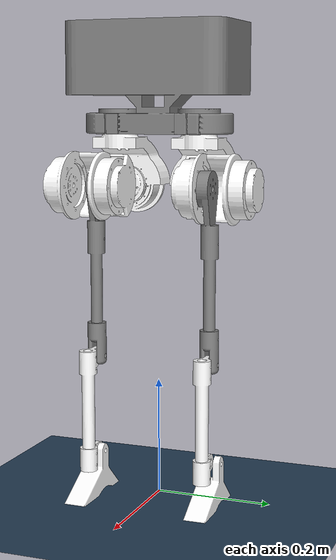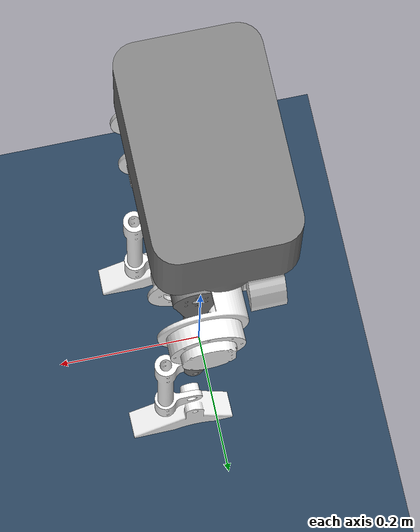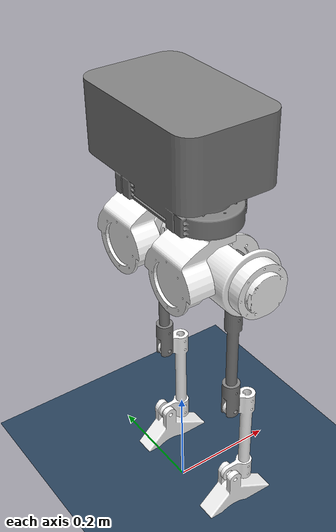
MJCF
<mujoco model="YX1 scene">
  <include file="YX1.xml"/>

  <statistic center="1.0 0.7 1.0" extent="0.8"/>

  <visual>
    <headlight diffuse="0.6 0.6 0.6" ambient="0.1 0.1 0.1" specular="0.9 0.9 0.9"/>
    <rgba haze="0.15 0.25 0.35 1"/>
    <global azimuth="-140" elevation="-20"/>
  </visual>

  <asset>
    <texture type="skybox" builtin="flat" rgb1="0 0 0" rgb2="0 0 0" width="512" height="3072"/>
    <texture type="2d" name="groundplane" builtin="checker" mark="edge" rgb1="0.2 0.3 0.4" rgb2="0.1 0.2 0.3" markrgb="0.8 0.8 0.8" width="300" height="300"/>
    <material name="groundplane" texture="groundplane" texuniform="true" texrepeat="5 5" reflectance="0.2"/>
  </asset>

  <worldbody>
    <light pos="1 0 3.5" dir="0 0 -1" directional="true"/>
    <geom name="floor" size="0 0 0.05" type="plane" material="groundplane"/>
  </worldbody>
</mujoco>

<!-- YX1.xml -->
<mujoco model="YX1">
  <compiler angle="radian" meshdir="meshes/"/>

  <default>
    <joint armature="0.01" damping="0.01" frictionloss="0.01"/>
  </default>

  <asset>
    <mesh name="base_link" file="base_link.STL"/>
    <mesh name="left_yaw_Link" file="left_yaw_Link.STL"/>
    <mesh name="left_roll_Link" file="left_roll_Link.STL"/>
    <mesh name="left_pitch_Link" file="left_pitch_Link.STL"/>
    <mesh name="left_knee_Link" file="left_knee_Link.STL"/>
    <mesh name="left_ankle_Link" file="left_ankle_Link.STL"/>
    <mesh name="right_yaw_Link" file="right_yaw_Link.STL"/>
    <mesh name="right_roll_Link" file="right_roll_Link.STL"/>
    <mesh name="right_pitch_Link" file="right_pitch_Link.STL"/>
    <mesh name="right_knee_Link" file="right_knee_Link.STL"/>
    <mesh name="right_ankle_Link" file="right_ankle_Link.STL"/>
  </asset>

  <worldbody>
    <body name="base_link"       pos="0 0 0.668">
      <inertial pos="3.5259e-05 -1.2162e-05 0.060842" quat="0.499989 0.500019 -0.500011 0.499981" mass="3.089" diaginertia="0.026484 0.021922 0.013081"/>
      <joint name="floating_base_joint" type="free" limited="false" actuatorfrclimited="false"/>
      <geom type="mesh" contype="0" conaffinity="0" group="1" density="0" rgba="0.49804 0.49804 0.49804 1" mesh="base_link"/>
      <geom type="mesh" rgba="0.49804 0.49804 0.49804 1" mesh="base_link"/>
      <body name="left_yaw_Link" pos="0 0.071324 -0.1324">
        <inertial pos="-0.035004 -0.00045659 0.037246" quat="0.936161 -0.00220983 0.351512 0.00603981" mass="0.39556" diaginertia="0.000763733 0.000520613 0.000432454"/>
        <joint name="left_yaw_joint" pos="0 0 0" axis="0 0 1" range="-0.43 0.43" actuatorfrcrange="-20 20"/>
        <geom type="mesh" contype="0" conaffinity="0" group="1" density="0" rgba="1 1 1 1" mesh="left_yaw_Link"/>
        <geom type="mesh" rgba="1 1 1 1" mesh="left_yaw_Link"/>
        <body name="left_roll_Link" pos="0.033302 0 0">
          <inertial pos="-0.0087446 0.0412 2.6491e-06" quat="0.649369 -6.43277e-06 4.17203e-05 0.760473" mass="0.61494" diaginertia="0.000921448 0.000673332 0.0006494"/>
          <joint name="left_roll_joint" pos="0 0 0" axis="1 0 0" range="-0.32 0.32" actuatorfrcrange="-33.5 33.5"/>
          <geom type="mesh" contype="0" conaffinity="0" group="1" density="0" rgba="1 1 1 1" mesh="left_roll_Link"/>
          <geom type="mesh" rgba="1 1 1 1" mesh="left_roll_Link"/>
          <body name="left_pitch_Link" pos="0 0.030959 0">
            <inertial pos="-0.00018038 -0.001663 -0.12173" quat="0.702402 0.0108741 -0.010724 0.711616" mass="0.19156" diaginertia="0.000321851 0.000309378 3.37513e-05"/>
            <joint name="left_pitch_joint" pos="0 0 0" axis="0 1 0" range="-1.57 1.57" actuatorfrcrange="-20 20"/>
            <geom type="mesh" contype="0" conaffinity="0" group="1" density="0" rgba="0.49804 0.49804 0.49804 1" mesh="left_pitch_Link"/>
            <geom type="mesh" rgba="0.49804 0.49804 0.49804 1" mesh="left_pitch_Link"/>
            <body name="left_knee_Link" pos="0 0 -0.29322">
              <inertial pos="0.03159 0.00041206 -0.089451" quat="0.702475 -0.00248549 -0.0025181 0.7117" mass="0.12591" diaginertia="0.000270113 0.000255329 2.73856e-05"/>
              <joint name="left_knee_joint" pos="0 0 0" axis="0 1 0" range="-0.26 2.05" actuatorfrcrange="-20 20"/>
              <geom type="mesh" contype="0" conaffinity="0" group="1" density="0" rgba="1 1 1 1" mesh="left_knee_Link"/>
              <geom type="mesh" rgba="1 1 1 1" mesh="left_knee_Link"/>
              <body name="left_ankle_Link" pos="0 0 -0.17">
                <inertial pos="0.011062 0.0041243 -0.049762" quat="0.441785 0.546303 0.550778 0.45058" mass="0.23135" diaginertia="0.000308007 0.000255713 0.0001116"/>
                <joint name="left_ankle_joint" pos="0 0 0" axis="0 1 0" range="-0.87 0.52" actuatorfrcrange="-12 12"/>
                <geom type="mesh" contype="0" conaffinity="0" group="1" density="0" rgba="1 1 1 1" mesh="left_ankle_Link"/>
                <geom type="mesh" rgba="1 1 1 1" mesh="left_ankle_Link"/>
              </body>
            </body>
          </body>
        </body>
      </body>
      <body name="right_yaw_Link" pos="0 -0.071324 -0.1324">
        <inertial pos="-0.035004 0.00045659 0.037246" quat="0.936161 0.00220907 0.351512 -0.00603954" mass="0.39556" diaginertia="0.000763733 0.000520613 0.000432454"/>
        <joint name="right_yaw_joint" pos="0 0 0" axis="0 0 1" range="-0.43 0.43" actuatorfrcrange="-20 20"/>
        <geom type="mesh" contype="0" conaffinity="0" group="1" density="0" rgba="1 1 1 1" mesh="right_yaw_Link"/>
        <geom type="mesh" rgba="1 1 1 1" mesh="right_yaw_Link"/>
        <body name="right_roll_Link" pos="0.033302 0 0">
          <inertial pos="-0.0087446 -0.0412 2.4733e-06" quat="0.760473 -4.20166e-05 6.15275e-06 0.649369" mass="0.61494" diaginertia="0.000921448 0.000673332 0.0006494"/>
          <joint name="right_roll_joint" pos="0 0 0" axis="1 0 0" range="-0.32 0.32" actuatorfrcrange="-33.5 33.5"/>
          <geom type="mesh" contype="0" conaffinity="0" group="1" density="0" rgba="1 1 1 1" mesh="right_roll_Link"/>
          <geom type="mesh" rgba="1 1 1 1" mesh="right_roll_Link"/>
          <body name="right_pitch_Link" pos="0 -0.030959 0">
            <inertial pos="-0.00018121 0.0016629 -0.12173" quat="0.711619 -0.0107337 0.0108655 0.7024" mass="0.19156" diaginertia="0.000321851 0.000309378 3.37512e-05"/>
            <joint name="right_pitch_joint" pos="0 0 0" axis="0 1 0" range="-1.57 1.57" actuatorfrcrange="-20 20"/>
            <geom type="mesh" contype="0" conaffinity="0" group="1" density="0" rgba="0.49804 0.49804 0.49804 1" mesh="right_pitch_Link"/>
            <geom type="mesh" rgba="0.49804 0.49804 0.49804 1" mesh="right_pitch_Link"/>
            <body name="right_knee_Link" pos="0 0 -0.29322">
              <inertial pos="0.03159 -0.00041205 -0.089451" quat="0.711699 -0.0025181 -0.0024855 0.702475" mass="0.12591" diaginertia="0.000270113 0.000255329 2.73856e-05"/>
              <joint name="right_knee_joint" pos="0 0 0" axis="0 1 0" range="-0.26 2.05" actuatorfrcrange="-20 20"/>
              <geom type="mesh" contype="0" conaffinity="0" group="1" density="0" rgba="1 1 1 1" mesh="right_knee_Link"/>
              <geom type="mesh" rgba="1 1 1 1" mesh="right_knee_Link"/>
              <body name="right_ankle_Link" pos="0 0 -0.17">
                <inertial pos="0.011232 -0.0041708 -0.049762" quat="0.447627 0.553438 0.543604 0.444782" mass="0.23135" diaginertia="0.000308011 0.000255712 0.000111596"/>
                <joint name="right_ankle_joint" pos="0 0 0" axis="0 1 0" range="-0.87 0.52" actuatorfrcrange="-12 12"/>
                <geom type="mesh" contype="0" conaffinity="0" group="1" density="0" rgba="1 1 1 1" mesh="right_ankle_Link"/>
                <geom type="mesh" rgba="1 1 1 1" mesh="right_ankle_Link"/>
              </body>
            </body>
          </body>
        </body>
      </body>
    </body>
  </worldbody>

  <actuator>
    <motor name="left_yaw_joint" joint="left_yaw_joint"/>
    <motor name="left_roll_joint" joint="left_roll_joint"/>
    <motor name="left_pitch_joint" joint="left_pitch_joint"/>
    <motor name="left_knee_joint" joint="left_knee_joint"/>
    <motor name="left_ankle_joint" joint="left_ankle_joint"/>

    <motor name="right_yaw_joint" joint="right_yaw_joint"/>
    <motor name="right_roll_joint" joint="right_roll_joint"/>
    <motor name="right_pitch_joint" joint="right_pitch_joint"/>
    <motor name="right_knee_joint" joint="right_knee_joint"/>
    <motor name="right_ankle_joint" joint="right_ankle_joint"/>

  </actuator>

</mujoco>
